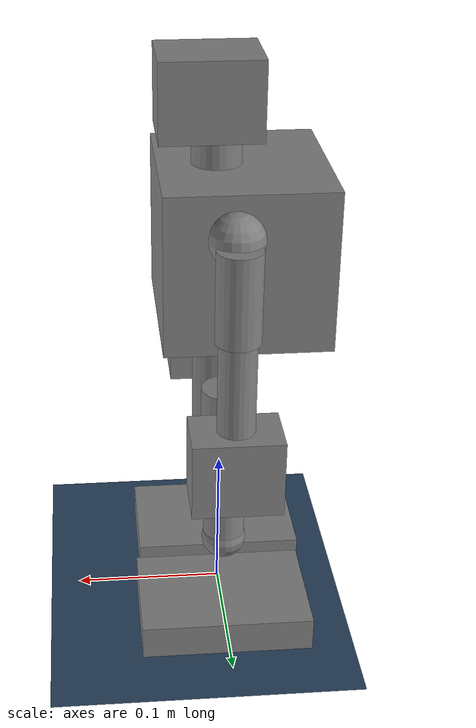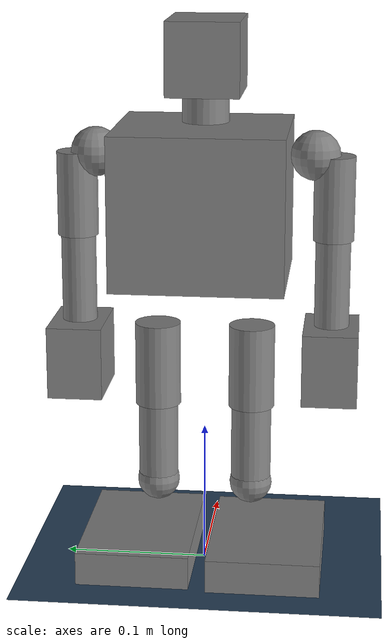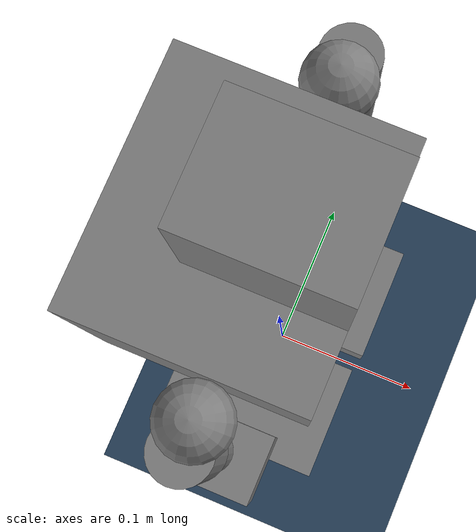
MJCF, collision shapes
<!-- Basic flat-ground scene: includes the robot MJCF and adds the environment
     (ground plane, lighting, skybox, sim options, home keyframe). -->
<mujoco model="tonypi_flat_ground">
  <include file="../tonypi.xml"/>

  <statistic center="0 0 0.15" extent="0.6"/>

  <visual>
    <headlight diffuse="0.6 0.6 0.6" ambient="0.3 0.3 0.3" specular="0 0 0"/>
    <global azimuth="120" elevation="-20"/>
  </visual>

  <asset>
    <texture type="skybox" builtin="gradient" rgb1="0.3 0.5 0.7" rgb2="0 0 0" width="512" height="3072"/>
    <texture type="2d" name="groundplane" builtin="checker" mark="edge" rgb1="0.2 0.3 0.4"
      rgb2="0.1 0.2 0.3" markrgb="0.8 0.8 0.8" width="300" height="300"/>
    <material name="groundplane" texture="groundplane" texuniform="true" texrepeat="5 5" reflectance="0.2"/>
  </asset>

  <worldbody>
    <light pos="0 0 3" dir="0 0 -1" directional="true"/>
    <geom name="floor" type="plane" size="5 5 0.1" material="groundplane"/>
    <camera name="track" mode="trackcom" pos="-2.5 -2.5 1.5"
      xyaxes="0.707 -0.707 0 0.226 0.226 0.934"/>
  </worldbody>

  <!-- base_link sits at the floor-height reference (pelvis is +0.267m above it,
       per ../tonypi.xml); 0.001 lifts the feet just clear of the ground plane. -->
  <keyframe>
    <key name="home" qpos="0 0 0.001 1 0 0 0 0 0 0 0 0 0 0 0 0 0 0 0 0 0 0 0 0 0"/>
  </keyframe>
</mujoco>

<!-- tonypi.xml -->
<mujoco model="tonypi">
  <compiler angle="radian"/>

  <default>
    <default class="servo">
      <joint damping="0.2" armature="0.01" frictionloss="0.05"/>
      <position kp="10" kv="0.5"/>
    </default>
    <default class="visual">
      <geom type="mesh" contype="0" conaffinity="0" group="1" density="0"/>
    </default>
    <default class="collision">
      <geom group="3" rgba="0.5 0.5 0.5 0"/>
    </default>
  </default>

  <asset>
    <mesh file="../meshes/visual/pelvis.stl"/>
    <mesh file="../meshes/visual/neck.stl"/>
    <mesh file="../meshes/visual/head.stl"/>
    <mesh file="../meshes/visual/l_shoulder.stl"/>
    <mesh file="../meshes/visual/l_upper_arm.stl"/>
    <mesh file="../meshes/visual/l_forearm.stl"/>
    <mesh file="../meshes/visual/r_shoulder.stl"/>
    <mesh file="../meshes/visual/r_upper_arm.stl"/>
    <mesh file="../meshes/visual/r_forearm.stl"/>
    <mesh file="../meshes/visual/l_hip.stl"/>
    <mesh file="../meshes/visual/l_thigh.stl"/>
    <mesh file="../meshes/visual/l_shin.stl"/>
    <mesh file="../meshes/visual/l_ankle.stl"/>
    <mesh file="../meshes/visual/l_foot.stl"/>
    <mesh file="../meshes/visual/r_hip.stl"/>
    <mesh file="../meshes/visual/r_thigh.stl"/>
    <mesh file="../meshes/visual/r_shin.stl"/>
    <mesh file="../meshes/visual/r_ankle.stl"/>
    <mesh file="../meshes/visual/r_foot.stl"/>
  </asset>

  <worldbody>
    <body name="base_link">
      <freejoint/>
      <inertial pos="0 0 0" mass="0.001" diaginertia="1e-06 1e-06 1e-06"/>
      <site name="imu" pos="0 0 0" size="0.005" rgba="0 0 0 0"/>

      <body name="pelvis" pos="0 0 0.267">
        <geom class="visual" mesh="pelvis" rgba="0.93 0.93 0.95 1"/>
        <geom class="collision" type="box" size="0.053 0.058 0.052" pos="-0.011 0 -0.002"/>
        <inertial pos="0 0 0" mass="0.60" diaginertia="8e-4 8e-4 6e-4"/>

        <body name="torso" pos="0 0 0.05">
          <inertial pos="0 0 0" mass="0.45" diaginertia="6e-4 6e-4 5e-4"/>

          <body name="neck" pos="0 0 0.05">
            <joint name="neck_yaw" class="servo" axis="0 0 1" range="-1.571 1.571" actuatorfrcrange="-1.0 1.0"/>
            <geom class="visual" mesh="neck" rgba="0.15 0.16 0.18 1"/>
            <geom class="collision" type="cylinder" size="0.016 0.019" pos="0.0045 0 -0.031"/>
            <inertial pos="0 0 0" mass="0.03" diaginertia="5e-6 5e-6 5e-6"/>

            <body name="head" pos="0 0.006 0.02">
              <joint name="head_pitch" class="servo" axis="0 1 0" range="-1.0 1.0" actuatorfrcrange="-1.0 1.0"/>
              <geom class="visual" mesh="head" rgba="0.93 0.93 0.95 1"/>
              <geom class="collision" type="box" size="0.032 0.025 0.025" pos="0.010 -0.006 -0.026"/>
              <inertial pos="0 0 0" mass="0.15" diaginertia="1.5e-4 1.5e-4 1.5e-4"/>
            </body>
          </body>

          <body name="l_shoulder" pos="0 0.0749 -0.021">
            <joint name="l_shoulder_pitch" class="servo" axis="0 1 0" range="-1.2 1.2" actuatorfrcrange="-1.5 1.5"/>
            <geom class="visual" mesh="l_shoulder" pos="0 -0.0169 0.054" rgba="0.15 0.16 0.18 1"/>
            <geom class="collision" type="sphere" size="0.017"/>
            <inertial pos="0 0 0" mass="0.04" diaginertia="8e-6 8e-6 8e-6"/>

            <body name="l_upper_arm" pos="0 0.013 0">
                  <!-- axis corrected to X (sideways lift/abduction), verified against the real
                   robot; the doc's Z axis (twist only, no lift) did not match actual motion. -->
              <joint name="l_upperarm_roll" class="servo" axis="1 0 0" range="-1.3 1.3" actuatorfrcrange="-1.5 1.5"/>
              <geom class="visual" mesh="l_upper_arm" pos="0 -0.0299 0.054" rgba="0.93 0.93 0.95 1"/>
              <geom class="collision" type="cylinder" size="0.014 0.029" pos="0 0 -0.029"/>
              <inertial pos="0 0 0" mass="0.08" diaginertia="3e-5 1e-5 3e-5"/>

              <body name="l_forearm" pos="0 0 -0.058">
                <!-- axis corrected to X (sideways bend, matches upperarm_roll's plane);
                     the doc's Y axis bent the elbow fwd/back (toward the face), not sideways. -->
                <joint name="l_elbow" class="servo" axis="1 0 0" range="-2.094 2.094" actuatorfrcrange="-1.2 1.2"/>
                <geom class="visual" mesh="l_forearm" pos="0 -0.0299 0.054" rgba="0.20 0.55 0.95 1"/>
                <geom class="collision" type="cylinder" size="0.012 0.0305" pos="0 0 -0.030"/>
                <!-- the forearm mesh includes the hand; the cylinder above only covers the
                     shaft, so this box covers the hand at the far end. -->
                <geom class="collision" type="box" size="0.0285 0.019 0.0253" pos="0 0 -0.086"/>
                <inertial pos="0 0 0" mass="0.06" diaginertia="2e-5 8e-6 2e-5"/>
              </body>
            </body>
          </body>

          <!-- z lowered 0.054, see l_shoulder above -->
          <body name="r_shoulder" pos="0 -0.0749 -0.021">
            <!-- range narrowed, see l_shoulder_pitch above -->
            <joint name="r_shoulder_pitch" class="servo" axis="0 1 0" range="-1.2 1.2" actuatorfrcrange="-1.5 1.5"/>
            <geom class="visual" mesh="r_shoulder" pos="0 0.0169 0.054" rgba="0.15 0.16 0.18 1"/>
            <geom class="collision" type="sphere" size="0.017"/>
            <inertial pos="0 0 0" mass="0.04" diaginertia="8e-6 8e-6 8e-6"/>

            <body name="r_upper_arm" pos="0 -0.013 0">
              <!-- axis mirrored (-X) vs the left arm's +X so a positive ctrl lifts both
                   arms outward/up symmetrically, see l_upperarm_roll above -->
              <joint name="r_upperarm_roll" class="servo" axis="-1 0 0" range="-1.3 1.3" actuatorfrcrange="-1.5 1.5"/>
              <geom class="visual" mesh="r_upper_arm" pos="0 0.0299 0.054" rgba="0.93 0.93 0.95 1"/>
              <geom class="collision" type="cylinder" size="0.014 0.029" pos="0 0 -0.029"/>
              <inertial pos="0 0 0" mass="0.08" diaginertia="3e-5 1e-5 3e-5"/>

              <body name="r_forearm" pos="0 0 -0.058">
                <!-- axis corrected to X (sideways bend), see l_elbow above -->
                <!-- axis mirrored (-X) vs the left elbow so a positive ctrl bends both
                     elbows symmetrically, same convention as r_upperarm_roll -->
                <joint name="r_elbow" class="servo" axis="-1 0 0" range="-2.094 2.094" actuatorfrcrange="-1.2 1.2"/>
                <geom class="visual" mesh="r_forearm" pos="0 0.0299 0.054" rgba="0.20 0.55 0.95 1"/>
                <geom class="collision" type="cylinder" size="0.012 0.0305" pos="0 0 -0.030"/>
                <!-- hand collision, see l_forearm above -->
                <geom class="collision" type="box" size="0.0285 0.019 0.0253" pos="0 0 -0.086"/>
                <inertial pos="0 0 0" mass="0.06" diaginertia="2e-5 8e-6 2e-5"/>
              </body>
            </body>
          </body>
        </body>

        <body name="l_hip" pos="0 0.033 -0.044">
          <joint name="l_hip_roll" class="servo" axis="1 0 0" range="-1.047 1.047" actuatorfrcrange="-2.0 2.0"/>
          <geom class="visual" mesh="l_hip" rgba="0.15 0.16 0.18 1"/>
          <geom class="collision" type="sphere" size="0.018"/>
          <inertial pos="0 0 0" mass="0.05" diaginertia="1e-5 1e-5 1e-5"/>

          <body name="l_thigh" pos="0 0 -0.0465">
            <joint name="l_hip_pitch" class="servo" axis="0 1 0" range="-2.094 2.094" actuatorfrcrange="-2.5 2.5"/>
            <geom class="visual" mesh="l_thigh" rgba="0.93 0.93 0.95 1"/>
            <geom class="collision" type="cylinder" size="0.016 0.0295" pos="0 0 -0.030"/>
            <inertial pos="0 0 0" mass="0.12" diaginertia="4e-5 4e-5 1.5e-5"/>

            <body name="l_shin" pos="0 0 -0.059">
              <joint name="l_knee" class="servo" axis="0 1 0" range="0.0 2.094" actuatorfrcrange="-2.5 2.5"/>
              <geom class="visual" mesh="l_shin" rgba="0.20 0.55 0.95 1"/>
              <geom class="collision" type="cylinder" size="0.014 0.029" pos="0 0 -0.029"/>
              <inertial pos="0 0 0" mass="0.10" diaginertia="3.5e-5 3.5e-5 1.2e-5"/>

              <body name="l_ankle" pos="0 0 -0.058">
                <joint name="l_ankle_pitch" class="servo" axis="0 1 0" range="-1.571 1.571" actuatorfrcrange="-2.0 2.0"/>
                <geom class="visual" mesh="l_ankle" rgba="0.15 0.16 0.18 1"/>
                <geom class="collision" type="sphere" size="0.015"/>
                <inertial pos="0 0 0" mass="0.04" diaginertia="8e-6 8e-6 8e-6"/>

                <body name="l_foot" pos="0 0 -0.0465">
                  <joint name="l_ankle_roll" class="servo" axis="1 0 0" range="-1.047 1.047" actuatorfrcrange="-2.0 2.0"/>
                  <geom class="visual" mesh="l_foot" rgba="0.93 0.93 0.95 1"/>
                  <!-- sized to the foot mesh footprint; the old box was ~half the sole area
                       and sat 7mm below it, so the visual foot floated above the ground. -->
                  <geom class="collision" type="box" size="0.0575 0.0395 0.012" pos="0.0015 0.0125 -0.002"/>
                  <inertial pos="0 0 0" mass="0.08" diaginertia="2e-5 3e-5 4e-5"/>
                </body>
              </body>
            </body>
          </body>
        </body>

        <body name="r_hip" pos="0 -0.033 -0.044">
          <joint name="r_hip_roll" class="servo" axis="1 0 0" range="-1.047 1.047" actuatorfrcrange="-2.0 2.0"/>
          <geom class="visual" mesh="r_hip" rgba="0.15 0.16 0.18 1"/>
          <geom class="collision" type="sphere" size="0.018"/>
          <inertial pos="0 0 0" mass="0.05" diaginertia="1e-5 1e-5 1e-5"/>

          <body name="r_thigh" pos="0 0 -0.0465">
            <joint name="r_hip_pitch" class="servo" axis="0 1 0" range="-2.094 2.094" actuatorfrcrange="-2.5 2.5"/>
            <geom class="visual" mesh="r_thigh" rgba="0.93 0.93 0.95 1"/>
            <geom class="collision" type="cylinder" size="0.016 0.0295" pos="0 0 -0.030"/>
            <inertial pos="0 0 0" mass="0.12" diaginertia="4e-5 4e-5 1.5e-5"/>

            <body name="r_shin" pos="0 0 -0.059">
              <joint name="r_knee" class="servo" axis="0 1 0" range="0.0 2.094" actuatorfrcrange="-2.5 2.5"/>
              <geom class="visual" mesh="r_shin" rgba="0.20 0.55 0.95 1"/>
              <geom class="collision" type="cylinder" size="0.014 0.029" pos="0 0 -0.029"/>
              <inertial pos="0 0 0" mass="0.10" diaginertia="3.5e-5 3.5e-5 1.2e-5"/>

              <body name="r_ankle" pos="0 0 -0.058">
                <joint name="r_ankle_pitch" class="servo" axis="0 1 0" range="-1.571 1.571" actuatorfrcrange="-2.0 2.0"/>
                <geom class="visual" mesh="r_ankle" rgba="0.15 0.16 0.18 1"/>
                <geom class="collision" type="sphere" size="0.015"/>
                <inertial pos="0 0 0" mass="0.04" diaginertia="8e-6 8e-6 8e-6"/>

                <body name="r_foot" pos="0 0 -0.0465">
                  <joint name="r_ankle_roll" class="servo" axis="1 0 0" range="-1.047 1.047" actuatorfrcrange="-2.0 2.0"/>
                  <geom class="visual" mesh="r_foot" rgba="0.93 0.93 0.95 1"/>
                  <!-- mirrored in Y, see l_foot above -->
                  <geom class="collision" type="box" size="0.0575 0.0395 0.012" pos="-0.0015 -0.0125 -0.002"/>
                  <inertial pos="0 0 0" mass="0.08" diaginertia="2e-5 3e-5 4e-5"/>
                </body>
              </body>
            </body>
          </body>
        </body>
      </body>
    </body>
  </worldbody>

  <contact>
    <exclude body1="l_upper_arm" body2="pelvis"/>
    <exclude body1="l_upper_arm" body2="torso"/>
    <exclude body1="r_upper_arm" body2="pelvis"/>
    <exclude body1="r_upper_arm" body2="torso"/>
    <exclude body1="l_forearm" body2="l_hip"/>
    <exclude body1="r_forearm" body2="r_hip"/>
  </contact>

  <actuator>
    <position name="neck_yaw" class="servo" joint="neck_yaw" ctrlrange="-1.571 1.571"/>
    <position name="head_pitch" class="servo" joint="head_pitch" ctrlrange="-1.0 1.0"/>
    <position name="l_shoulder_pitch" class="servo" joint="l_shoulder_pitch" ctrlrange="-1.2 1.2"/>
    <position name="l_upperarm_roll" class="servo" joint="l_upperarm_roll" ctrlrange="-1.3 1.3"/>
    <position name="l_elbow" class="servo" joint="l_elbow" ctrlrange="-2.094 2.094"/>
    <position name="r_shoulder_pitch" class="servo" joint="r_shoulder_pitch" ctrlrange="-1.2 1.2"/>
    <position name="r_upperarm_roll" class="servo" joint="r_upperarm_roll" ctrlrange="-1.3 1.3"/>
    <position name="r_elbow" class="servo" joint="r_elbow" ctrlrange="-2.094 2.094"/>
    <position name="l_hip_roll" class="servo" joint="l_hip_roll" ctrlrange="-1.047 1.047"/>
    <position name="l_hip_pitch" class="servo" joint="l_hip_pitch" ctrlrange="-2.094 2.094"/>
    <position name="l_knee" class="servo" joint="l_knee" ctrlrange="0.0 2.094"/>
    <position name="l_ankle_pitch" class="servo" joint="l_ankle_pitch" ctrlrange="-1.571 1.571"/>
    <position name="l_ankle_roll" class="servo" joint="l_ankle_roll" ctrlrange="-1.047 1.047"/>
    <position name="r_hip_roll" class="servo" joint="r_hip_roll" ctrlrange="-1.047 1.047"/>
    <position name="r_hip_pitch" class="servo" joint="r_hip_pitch" ctrlrange="-2.094 2.094"/>
    <position name="r_knee" class="servo" joint="r_knee" ctrlrange="0.0 2.094"/>
    <position name="r_ankle_pitch" class="servo" joint="r_ankle_pitch" ctrlrange="-1.571 1.571"/>
    <position name="r_ankle_roll" class="servo" joint="r_ankle_roll" ctrlrange="-1.047 1.047"/>
  </actuator>

  <sensor>
    <accelerometer name="imu_accelerometer" site="imu"/>
    <gyro name="imu_gyroscope" site="imu"/>
  </sensor>
</mujoco>
